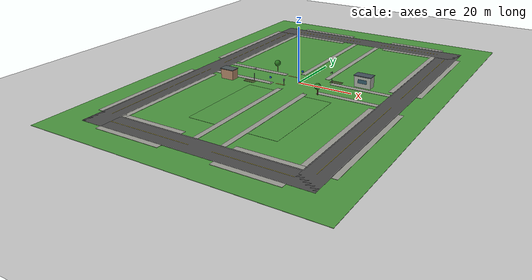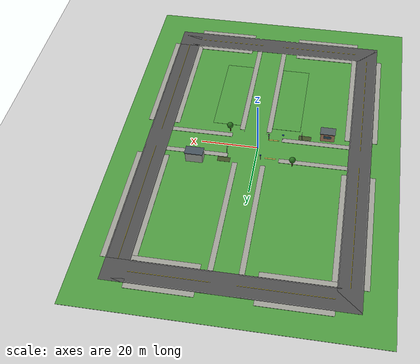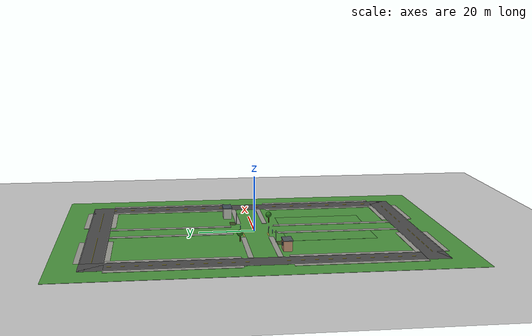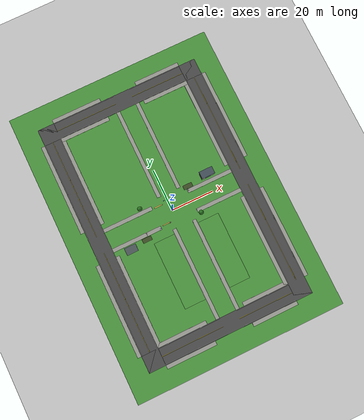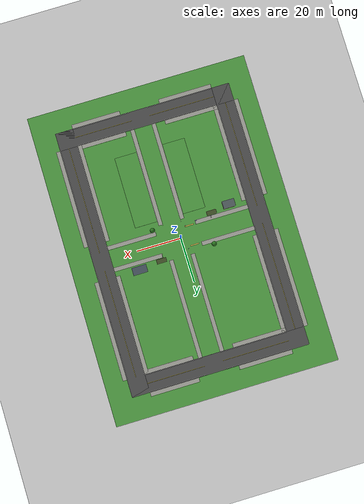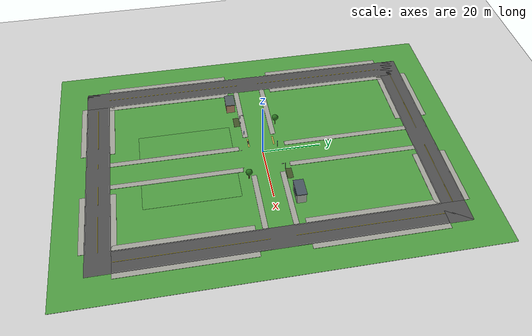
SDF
<sdf version="1.6">
 <world name="safe_drive_connected_road">
  <include><uri>model://ground_plane</uri><pose>0 0 -0.1 0 0 0</pose></include>
  <model name="pedestrian_signal_fixture">
   <static>true</static>
   <link name="post">
    <visual name="pole">
     <pose>-3.3 -4.68 1.04 0 0 0</pose>
     <geometry><cylinder><radius>0.05</radius><length>2.08</length></cylinder></geometry>
     <material><ambient>0.20 0.23 0.25 1</ambient><diffuse>0.31 0.34 0.36 1</diffuse></material>
    </visual>
    <visual name="housing">
     <pose>-3.3 -4.70 2.08 0 0 0</pose>
     <geometry><box><size>0.48 0.23 0.83</size></box></geometry>
     <material><ambient>0.035 0.045 0.05 1</ambient><diffuse>0.065 0.075 0.085 1</diffuse></material>
    </visual>
    <visual name="dont_walk_lens">
     <pose>-3.3 -4.56 2.27 0 0 0</pose>
     <geometry><box><size>0.31 0.025 0.30</size></box></geometry>
     <material><ambient>0.17 0.025 0.02 1</ambient><diffuse>0.17 0.025 0.02 1</diffuse></material>
    </visual>
    <visual name="walk_lens">
     <pose>-3.3 -4.56 1.89 0 0 0</pose>
     <geometry><box><size>0.31 0.025 0.30</size></box></geometry>
     <material><ambient>0.02 0.15 0.04 1</ambient><diffuse>0.02 0.15 0.04 1</diffuse></material>
    </visual>
   </link>
  </model>
  <model name="roadside">
   <static>true</static>
   <link name="streetscape">
    <visual name="south_arm_grass_west">
     <pose>-8 -26 -0.06 0 0 0</pose>
     <geometry><box><size>12 32 0.08</size></box></geometry>
     <material>
      <script>
       <uri>file://safe_drive_road/materials/scripts</uri>
       <uri>file://safe_drive_road/materials/textures</uri>
       <name>SafeDrive/Grass</name>
      </script>
     </material>
    </visual>
    <visual name="south_arm_grass_east">
     <pose>12 -26 -0.06 0 0 0</pose>
     <geometry><box><size>12 32 0.08</size></box></geometry>
     <material>
      <script>
       <uri>file://safe_drive_road/materials/scripts</uri>
       <uri>file://safe_drive_road/materials/textures</uri>
       <name>SafeDrive/Grass</name>
      </script>
     </material>
    </visual>
    <visual name="south_arm_sidewalk_west">
     <pose>-3 -26 -0.015 0 0 0</pose>
     <geometry><box><size>1.8 32 0.06</size></box></geometry>
     <material>
      <script>
       <uri>file://safe_drive_road/materials/scripts</uri>
       <uri>file://safe_drive_road/materials/textures</uri>
       <name>SafeDrive/Concrete</name>
      </script>
     </material>
    </visual>
    <visual name="south_arm_sidewalk_east">
     <pose>7 -26 -0.015 0 0 0</pose>
     <geometry><box><size>1.8 32 0.06</size></box></geometry>
     <material>
      <script>
       <uri>file://safe_drive_road/materials/scripts</uri>
       <uri>file://safe_drive_road/materials/textures</uri>
       <name>SafeDrive/Concrete</name>
      </script>
     </material>
    </visual>
    <visual name="south_arm_curb_west">
     <pose>-2.04 -24 -0.005 0 0 0</pose>
     <geometry><box><size>0.08 34 0.05</size></box></geometry>
     <material><ambient>0.75 0.75 0.70 1</ambient><diffuse>0.80 0.80 0.75 1</diffuse></material>
    </visual>
    <visual name="south_arm_curb_east">
     <pose>6.04 -24 -0.005 0 0 0</pose>
     <geometry><box><size>0.08 34 0.05</size></box></geometry>
     <material><ambient>0.75 0.75 0.70 1</ambient><diffuse>0.80 0.80 0.75 1</diffuse></material>
    </visual>
    <visual name="north_crossing_entry">
     <pose>-5 4.38 0.019 0 0 0</pose>
     <geometry><box><size>3.90 0.46 0.006</size></box></geometry>
     <material><ambient>0.73 0.63 0.27 1</ambient><diffuse>0.84 0.72 0.31 1</diffuse></material>
    </visual>
    <visual name="south_crossing_entry">
     <pose>-5 -4.38 0.019 0 0 0</pose>
     <geometry><box><size>3.90 0.46 0.006</size></box></geometry>
     <material><ambient>0.73 0.63 0.27 1</ambient><diffuse>0.84 0.72 0.31 1</diffuse></material>
    </visual>
    <visual name="north_planting_bed">
     <pose>11 7.0 -0.01 0 0 0</pose>
     <geometry><box><size>4.4 2.0 0.035</size></box></geometry>
     <material><ambient>0.18 0.24 0.12 1</ambient><diffuse>0.25 0.31 0.15 1</diffuse></material>
    </visual>
    <visual name="south_planting_bed">
     <pose>-16 -7.0 -0.01 0 0 0</pose>
     <geometry><box><size>4.4 2.0 0.035</size></box></geometry>
     <material><ambient>0.18 0.24 0.12 1</ambient><diffuse>0.25 0.31 0.15 1</diffuse></material>
    </visual>
    <visual name="north_lamp_post">
     <pose>10 5.70 2.10 0 0 0</pose>
     <geometry><cylinder><radius>0.065</radius><length>4.20</length></cylinder></geometry>
     <material><ambient>0.24 0.28 0.31 1</ambient><diffuse>0.36 0.40 0.43 1</diffuse></material>
    </visual>
    <visual name="north_lamp_arm">
     <pose>10 5.15 4.12 0 0 0</pose>
     <geometry><box><size>0.09 1.18 0.08</size></box></geometry>
     <material><ambient>0.24 0.28 0.31 1</ambient><diffuse>0.36 0.40 0.43 1</diffuse></material>
    </visual>
    <visual name="north_lamp_head">
     <pose>10 4.62 4.06 0 0 0</pose>
     <geometry><box><size>0.46 0.24 0.10</size></box></geometry>
     <material><ambient>0.83 0.81 0.64 1</ambient><diffuse>0.88 0.86 0.70 1</diffuse></material>
    </visual>
    <visual name="south_lamp_post">
     <pose>-15 -5.70 2.10 0 0 0</pose>
     <geometry><cylinder><radius>0.065</radius><length>4.20</length></cylinder></geometry>
     <material><ambient>0.24 0.28 0.31 1</ambient><diffuse>0.36 0.40 0.43 1</diffuse></material>
    </visual>
    <visual name="south_lamp_arm">
     <pose>-15 -5.15 4.12 0 0 0</pose>
     <geometry><box><size>0.09 1.18 0.08</size></box></geometry>
     <material><ambient>0.24 0.28 0.31 1</ambient><diffuse>0.36 0.40 0.43 1</diffuse></material>
    </visual>
    <visual name="south_lamp_head">
     <pose>-15 -4.62 4.06 0 0 0</pose>
     <geometry><box><size>0.46 0.24 0.10</size></box></geometry>
     <material><ambient>0.83 0.81 0.64 1</ambient><diffuse>0.88 0.86 0.70 1</diffuse></material>
    </visual>
    <visual name="north_pavilion_body">
     <pose>21 8.25 2.0 0 0 0</pose>
     <geometry><box><size>6.0 3.1 4.0</size></box></geometry>
     <material><ambient>0.50 0.52 0.49 1</ambient><diffuse>0.66 0.68 0.64 1</diffuse></material>
    </visual>
    <visual name="north_pavilion_roof">
     <pose>21 8.25 4.12 0 0 0</pose>
     <geometry><box><size>6.4 3.4 0.25</size></box></geometry>
     <material><ambient>0.19 0.24 0.29 1</ambient><diffuse>0.27 0.32 0.36 1</diffuse></material>
    </visual>
    <visual name="north_pavilion_window">
     <pose>21 6.69 2.25 0 0 0</pose>
     <geometry><box><size>3.2 0.025 1.35</size></box></geometry>
     <material><ambient>0.11 0.23 0.29 1</ambient><diffuse>0.20 0.35 0.41 1</diffuse></material>
    </visual>
    <visual name="south_pavilion_body">
     <pose>-24 -8.20 1.75 0 0 0</pose>
     <geometry><box><size>5.0 3.0 3.5</size></box></geometry>
     <material><ambient>0.57 0.42 0.32 1</ambient><diffuse>0.70 0.53 0.41 1</diffuse></material>
    </visual>
    <visual name="south_pavilion_roof">
     <pose>-24 -8.20 3.62 0 0 0</pose>
     <geometry><box><size>5.4 3.4 0.25</size></box></geometry>
     <material><ambient>0.22 0.26 0.28 1</ambient><diffuse>0.31 0.35 0.36 1</diffuse></material>
    </visual>
    <visual name="south_pavilion_window">
     <pose>-24 -6.69 2.02 0 0 0</pose>
     <geometry><box><size>2.7 0.025 1.15</size></box></geometry>
     <material><ambient>0.11 0.23 0.29 1</ambient><diffuse>0.20 0.35 0.41 1</diffuse></material>
    </visual>
    <visual name="south_crossing_sign_post">
     <pose>-8.3 -5.35 1.05 0 0 0</pose>
     <geometry><cylinder><radius>0.045</radius><length>2.1</length></cylinder></geometry>
     <material><ambient>0.32 0.35 0.37 1</ambient><diffuse>0.55 0.58 0.60 1</diffuse></material>
    </visual>
    <visual name="south_crossing_sign">
     <pose>-8.3 -5.35 2.25 0 0 0</pose>
     <geometry><box><size>0.65 0.08 0.65</size></box></geometry>
     <material><ambient>0.08 0.25 0.67 1</ambient><diffuse>0.10 0.37 0.85 1</diffuse></material>
    </visual>
    <visual name="north_crossing_sign_post">
     <pose>-1.7 5.35 1.05 0 0 0</pose>
     <geometry><cylinder><radius>0.045</radius><length>2.1</length></cylinder></geometry>
     <material><ambient>0.32 0.35 0.37 1</ambient><diffuse>0.55 0.58 0.60 1</diffuse></material>
    </visual>
    <visual name="north_crossing_sign">
     <pose>-1.7 5.35 2.25 0 0 0</pose>
     <geometry><box><size>0.65 0.08 0.65</size></box></geometry>
     <material><ambient>0.08 0.25 0.67 1</ambient><diffuse>0.10 0.37 0.85 1</diffuse></material>
    </visual>
    <visual name="south_tree_trunk">
     <pose>11 -6.6 1.3 0 0 0</pose>
     <geometry><cylinder><radius>0.16</radius><length>2.6</length></cylinder></geometry>
     <material><ambient>0.27 0.15 0.07 1</ambient><diffuse>0.39 0.23 0.10 1</diffuse></material>
    </visual>
    <visual name="south_tree_crown">
     <pose>11 -6.6 3.1 0 0 0</pose>
     <geometry><sphere><radius>1.1</radius></sphere></geometry>
     <material><ambient>0.09 0.27 0.07 1</ambient><diffuse>0.16 0.45 0.12 1</diffuse></material>
    </visual>
    <visual name="north_tree_trunk">
     <pose>-13 6.6 1.3 0 0 0</pose>
     <geometry><cylinder><radius>0.16</radius><length>2.6</length></cylinder></geometry>
     <material><ambient>0.27 0.15 0.07 1</ambient><diffuse>0.39 0.23 0.10 1</diffuse></material>
    </visual>
    <visual name="north_tree_crown">
     <pose>-13 6.6 3.1 0 0 0</pose>
     <geometry><sphere><radius>1.1</radius></sphere></geometry>
     <material><ambient>0.09 0.27 0.07 1</ambient><diffuse>0.16 0.45 0.12 1</diffuse></material>
    </visual>
   </link>
  </model>
  <model name="connected_road_grid">
   <static>true</static>
   <link name="road_surfaces">
    <visual name="grass_base">
     <pose>0 0 -0.105 0 0 0</pose>
     <geometry><box><size>100 140 0.1</size></box></geometry>
     <material>
      <script>
       <uri>file://safe_drive_road/materials/scripts</uri>
       <uri>file://safe_drive_road/materials/textures</uri>
       <name>SafeDrive/Grass</name>
      </script>
     </material>
    </visual>
    <collision name="south_collision">
     <pose>0 -56 -0.05 0 0 0</pose>
     <geometry><box><size>80 8 0.1</size></box></geometry>
    </collision>
    <visual name="south_asphalt">
     <pose>0 -56 -0.045 0 0 0</pose>
     <geometry><box><size>80 8 0.01</size></box></geometry>
     <material>
      <script>
       <uri>file://safe_drive_road/materials/scripts</uri>
       <uri>file://safe_drive_road/materials/textures</uri>
       <name>SafeDrive/Asphalt</name>
      </script>
     </material>
    </visual>
    <visual name="south_center_1">
     <pose>-17 -56 -0.028 0 0 0</pose>
     <geometry><box><size>30 0.12 0.012</size></box></geometry>
     <material><ambient>0.95 0.85 0.10 1</ambient><diffuse>0.95 0.85 0.10 1</diffuse></material>
    </visual>
    <visual name="south_edge_1_-3.75">
     <pose>-17 -59.75 -0.028 0 0 0</pose>
     <geometry><box><size>30 0.1 0.012</size></box></geometry>
     <material><ambient>0.95 0.95 0.95 1</ambient><diffuse>0.95 0.95 0.95 1</diffuse></material>
    </visual>
    <visual name="south_edge_1_3.75">
     <pose>-17 -52.25 -0.028 0 0 0</pose>
     <geometry><box><size>30 0.1 0.012</size></box></geometry>
     <material><ambient>0.95 0.95 0.95 1</ambient><diffuse>0.95 0.95 0.95 1</diffuse></material>
    </visual>
    <visual name="south_center_2">
     <pose>19 -56 -0.028 0 0 0</pose>
     <geometry><box><size>26 0.12 0.012</size></box></geometry>
     <material><ambient>0.95 0.85 0.10 1</ambient><diffuse>0.95 0.85 0.10 1</diffuse></material>
    </visual>
    <visual name="south_edge_2_-3.75">
     <pose>19 -59.75 -0.028 0 0 0</pose>
     <geometry><box><size>26 0.1 0.012</size></box></geometry>
     <material><ambient>0.95 0.95 0.95 1</ambient><diffuse>0.95 0.95 0.95 1</diffuse></material>
    </visual>
    <visual name="south_edge_2_3.75">
     <pose>19 -52.25 -0.028 0 0 0</pose>
     <geometry><box><size>26 0.1 0.012</size></box></geometry>
     <material><ambient>0.95 0.95 0.95 1</ambient><diffuse>0.95 0.95 0.95 1</diffuse></material>
    </visual>
    <collision name="north_collision">
     <pose>0 56 -0.05 0 0 0</pose>
     <geometry><box><size>80 8 0.1</size></box></geometry>
    </collision>
    <visual name="north_asphalt">
     <pose>0 56 -0.045 0 0 0</pose>
     <geometry><box><size>80 8 0.01</size></box></geometry>
     <material>
      <script>
       <uri>file://safe_drive_road/materials/scripts</uri>
       <uri>file://safe_drive_road/materials/textures</uri>
       <name>SafeDrive/Asphalt</name>
      </script>
     </material>
    </visual>
    <visual name="north_center_1">
     <pose>-17 56 -0.028 0 0 0</pose>
     <geometry><box><size>30 0.12 0.012</size></box></geometry>
     <material><ambient>0.95 0.85 0.10 1</ambient><diffuse>0.95 0.85 0.10 1</diffuse></material>
    </visual>
    <visual name="north_edge_1_-3.75">
     <pose>-17 52.25 -0.028 0 0 0</pose>
     <geometry><box><size>30 0.1 0.012</size></box></geometry>
     <material><ambient>0.95 0.95 0.95 1</ambient><diffuse>0.95 0.95 0.95 1</diffuse></material>
    </visual>
    <visual name="north_edge_1_3.75">
     <pose>-17 59.75 -0.028 0 0 0</pose>
     <geometry><box><size>30 0.1 0.012</size></box></geometry>
     <material><ambient>0.95 0.95 0.95 1</ambient><diffuse>0.95 0.95 0.95 1</diffuse></material>
    </visual>
    <visual name="north_center_2">
     <pose>19 56 -0.028 0 0 0</pose>
     <geometry><box><size>26 0.12 0.012</size></box></geometry>
     <material><ambient>0.95 0.85 0.10 1</ambient><diffuse>0.95 0.85 0.10 1</diffuse></material>
    </visual>
    <visual name="north_edge_2_-3.75">
     <pose>19 52.25 -0.028 0 0 0</pose>
     <geometry><box><size>26 0.1 0.012</size></box></geometry>
     <material><ambient>0.95 0.95 0.95 1</ambient><diffuse>0.95 0.95 0.95 1</diffuse></material>
    </visual>
    <visual name="north_edge_2_3.75">
     <pose>19 59.75 -0.028 0 0 0</pose>
     <geometry><box><size>26 0.1 0.012</size></box></geometry>
     <material><ambient>0.95 0.95 0.95 1</ambient><diffuse>0.95 0.95 0.95 1</diffuse></material>
    </visual>
    <collision name="west_collision">
     <pose>-36 0 -0.05 0 0 0</pose>
     <geometry><box><size>8 120 0.1</size></box></geometry>
    </collision>
    <visual name="west_asphalt">
     <pose>-36 0 -0.045 0 0 0</pose>
     <geometry><box><size>8 120 0.01</size></box></geometry>
     <material>
      <script>
       <uri>file://safe_drive_road/materials/scripts</uri>
       <uri>file://safe_drive_road/materials/textures</uri>
       <name>SafeDrive/Asphalt</name>
      </script>
     </material>
    </visual>
    <visual name="west_center_1">
     <pose>-36 -28 -0.028 0 0 0</pose>
     <geometry><box><size>0.12 48 0.012</size></box></geometry>
     <material><ambient>0.95 0.85 0.10 1</ambient><diffuse>0.95 0.85 0.10 1</diffuse></material>
    </visual>
    <visual name="west_edge_1_-3.75">
     <pose>-39.75 -28 -0.028 0 0 0</pose>
     <geometry><box><size>0.1 48 0.012</size></box></geometry>
     <material><ambient>0.95 0.95 0.95 1</ambient><diffuse>0.95 0.95 0.95 1</diffuse></material>
    </visual>
    <visual name="west_edge_1_3.75">
     <pose>-32.25 -28 -0.028 0 0 0</pose>
     <geometry><box><size>0.1 48 0.012</size></box></geometry>
     <material><ambient>0.95 0.95 0.95 1</ambient><diffuse>0.95 0.95 0.95 1</diffuse></material>
    </visual>
    <visual name="west_center_2">
     <pose>-36 28 -0.028 0 0 0</pose>
     <geometry><box><size>0.12 48 0.012</size></box></geometry>
     <material><ambient>0.95 0.85 0.10 1</ambient><diffuse>0.95 0.85 0.10 1</diffuse></material>
    </visual>
    <visual name="west_edge_2_-3.75">
     <pose>-39.75 28 -0.028 0 0 0</pose>
     <geometry><box><size>0.1 48 0.012</size></box></geometry>
     <material><ambient>0.95 0.95 0.95 1</ambient><diffuse>0.95 0.95 0.95 1</diffuse></material>
    </visual>
    <visual name="west_edge_2_3.75">
     <pose>-32.25 28 -0.028 0 0 0</pose>
     <geometry><box><size>0.1 48 0.012</size></box></geometry>
     <material><ambient>0.95 0.95 0.95 1</ambient><diffuse>0.95 0.95 0.95 1</diffuse></material>
    </visual>
    <collision name="east_collision">
     <pose>36 0 -0.05 0 0 0</pose>
     <geometry><box><size>8 120 0.1</size></box></geometry>
    </collision>
    <visual name="east_asphalt">
     <pose>36 0 -0.045 0 0 0</pose>
     <geometry><box><size>8 120 0.01</size></box></geometry>
     <material>
      <script>
       <uri>file://safe_drive_road/materials/scripts</uri>
       <uri>file://safe_drive_road/materials/textures</uri>
       <name>SafeDrive/Asphalt</name>
      </script>
     </material>
    </visual>
    <visual name="east_center_1">
     <pose>36 -28 -0.028 0 0 0</pose>
     <geometry><box><size>0.12 48 0.012</size></box></geometry>
     <material><ambient>0.95 0.85 0.10 1</ambient><diffuse>0.95 0.85 0.10 1</diffuse></material>
    </visual>
    <visual name="east_edge_1_-3.75">
     <pose>32.25 -28 -0.028 0 0 0</pose>
     <geometry><box><size>0.1 48 0.012</size></box></geometry>
     <material><ambient>0.95 0.95 0.95 1</ambient><diffuse>0.95 0.95 0.95 1</diffuse></material>
    </visual>
    <visual name="east_edge_1_3.75">
     <pose>39.75 -28 -0.028 0 0 0</pose>
     <geometry><box><size>0.1 48 0.012</size></box></geometry>
     <material><ambient>0.95 0.95 0.95 1</ambient><diffuse>0.95 0.95 0.95 1</diffuse></material>
    </visual>
    <visual name="east_center_2">
     <pose>36 28 -0.028 0 0 0</pose>
     <geometry><box><size>0.12 48 0.012</size></box></geometry>
     <material><ambient>0.95 0.85 0.10 1</ambient><diffuse>0.95 0.85 0.10 1</diffuse></material>
    </visual>
    <visual name="east_edge_2_-3.75">
     <pose>32.25 28 -0.028 0 0 0</pose>
     <geometry><box><size>0.1 48 0.012</size></box></geometry>
     <material><ambient>0.95 0.95 0.95 1</ambient><diffuse>0.95 0.95 0.95 1</diffuse></material>
    </visual>
    <visual name="east_edge_2_3.75">
     <pose>39.75 28 -0.028 0 0 0</pose>
     <geometry><box><size>0.1 48 0.012</size></box></geometry>
     <material><ambient>0.95 0.95 0.95 1</ambient><diffuse>0.95 0.95 0.95 1</diffuse></material>
    </visual>
    <visual name="south_sidewalk_-32_-4.9">
     <pose>-20 -60.9 -0.015 0 0 0</pose>
     <geometry><box><size>24 1.8 0.1</size></box></geometry>
     <material><ambient>0.62 0.62 0.59 1</ambient><diffuse>0.62 0.62 0.59 1</diffuse></material>
    </visual>
    <visual name="south_sidewalk_-32_4.9">
     <pose>-20 -51.1 -0.015 0 0 0</pose>
     <geometry><box><size>24 1.8 0.1</size></box></geometry>
     <material><ambient>0.62 0.62 0.59 1</ambient><diffuse>0.62 0.62 0.59 1</diffuse></material>
    </visual>
    <visual name="south_sidewalk_10_-4.9">
     <pose>21 -60.9 -0.015 0 0 0</pose>
     <geometry><box><size>22 1.8 0.1</size></box></geometry>
     <material><ambient>0.62 0.62 0.59 1</ambient><diffuse>0.62 0.62 0.59 1</diffuse></material>
    </visual>
    <visual name="south_sidewalk_10_4.9">
     <pose>21 -51.1 -0.015 0 0 0</pose>
     <geometry><box><size>22 1.8 0.1</size></box></geometry>
     <material><ambient>0.62 0.62 0.59 1</ambient><diffuse>0.62 0.62 0.59 1</diffuse></material>
    </visual>
    <visual name="middle_sidewalk_-32_-4.9">
     <pose>-20 -4.9 -0.015 0 0 0</pose>
     <geometry><box><size>24 1.8 0.1</size></box></geometry>
     <material><ambient>0.62 0.62 0.59 1</ambient><diffuse>0.62 0.62 0.59 1</diffuse></material>
    </visual>
    <visual name="middle_sidewalk_-32_4.9">
     <pose>-20 4.9 -0.015 0 0 0</pose>
     <geometry><box><size>24 1.8 0.1</size></box></geometry>
     <material><ambient>0.62 0.62 0.59 1</ambient><diffuse>0.62 0.62 0.59 1</diffuse></material>
    </visual>
    <visual name="middle_sidewalk_10_-4.9">
     <pose>21 -4.9 -0.015 0 0 0</pose>
     <geometry><box><size>22 1.8 0.1</size></box></geometry>
     <material><ambient>0.62 0.62 0.59 1</ambient><diffuse>0.62 0.62 0.59 1</diffuse></material>
    </visual>
    <visual name="middle_sidewalk_10_4.9">
     <pose>21 4.9 -0.015 0 0 0</pose>
     <geometry><box><size>22 1.8 0.1</size></box></geometry>
     <material><ambient>0.62 0.62 0.59 1</ambient><diffuse>0.62 0.62 0.59 1</diffuse></material>
    </visual>
    <visual name="north_sidewalk_-32_-4.9">
     <pose>-20 51.1 -0.015 0 0 0</pose>
     <geometry><box><size>24 1.8 0.1</size></box></geometry>
     <material><ambient>0.62 0.62 0.59 1</ambient><diffuse>0.62 0.62 0.59 1</diffuse></material>
    </visual>
    <visual name="north_sidewalk_-32_4.9">
     <pose>-20 60.9 -0.015 0 0 0</pose>
     <geometry><box><size>24 1.8 0.1</size></box></geometry>
     <material><ambient>0.62 0.62 0.59 1</ambient><diffuse>0.62 0.62 0.59 1</diffuse></material>
    </visual>
    <visual name="north_sidewalk_10_-4.9">
     <pose>21 51.1 -0.015 0 0 0</pose>
     <geometry><box><size>22 1.8 0.1</size></box></geometry>
     <material><ambient>0.62 0.62 0.59 1</ambient><diffuse>0.62 0.62 0.59 1</diffuse></material>
    </visual>
    <visual name="north_sidewalk_10_4.9">
     <pose>21 60.9 -0.015 0 0 0</pose>
     <geometry><box><size>22 1.8 0.1</size></box></geometry>
     <material><ambient>0.62 0.62 0.59 1</ambient><diffuse>0.62 0.62 0.59 1</diffuse></material>
    </visual>
    <visual name="west_sidewalk_-52_-4.9">
     <pose>-40.9 -30 -0.015 0 0 0</pose>
     <geometry><box><size>1.8 44 0.1</size></box></geometry>
     <material><ambient>0.62 0.62 0.59 1</ambient><diffuse>0.62 0.62 0.59 1</diffuse></material>
    </visual>
    <visual name="west_sidewalk_-52_4.9">
     <pose>-31.1 -30 -0.015 0 0 0</pose>
     <geometry><box><size>1.8 44 0.1</size></box></geometry>
     <material><ambient>0.62 0.62 0.59 1</ambient><diffuse>0.62 0.62 0.59 1</diffuse></material>
    </visual>
    <visual name="west_sidewalk_8_-4.9">
     <pose>-40.9 30 -0.015 0 0 0</pose>
     <geometry><box><size>1.8 44 0.1</size></box></geometry>
     <material><ambient>0.62 0.62 0.59 1</ambient><diffuse>0.62 0.62 0.59 1</diffuse></material>
    </visual>
    <visual name="west_sidewalk_8_4.9">
     <pose>-31.1 30 -0.015 0 0 0</pose>
     <geometry><box><size>1.8 44 0.1</size></box></geometry>
     <material><ambient>0.62 0.62 0.59 1</ambient><diffuse>0.62 0.62 0.59 1</diffuse></material>
    </visual>
    <visual name="middle_sidewalk_-52_-4.9">
     <pose>-2.9 -30 -0.015 0 0 0</pose>
     <geometry><box><size>1.8 44 0.1</size></box></geometry>
     <material><ambient>0.62 0.62 0.59 1</ambient><diffuse>0.62 0.62 0.59 1</diffuse></material>
    </visual>
    <visual name="middle_sidewalk_-52_4.9">
     <pose>6.9 -30 -0.015 0 0 0</pose>
     <geometry><box><size>1.8 44 0.1</size></box></geometry>
     <material><ambient>0.62 0.62 0.59 1</ambient><diffuse>0.62 0.62 0.59 1</diffuse></material>
    </visual>
    <visual name="middle_sidewalk_8_-4.9">
     <pose>-2.9 30 -0.015 0 0 0</pose>
     <geometry><box><size>1.8 44 0.1</size></box></geometry>
     <material><ambient>0.62 0.62 0.59 1</ambient><diffuse>0.62 0.62 0.59 1</diffuse></material>
    </visual>
    <visual name="middle_sidewalk_8_4.9">
     <pose>6.9 30 -0.015 0 0 0</pose>
     <geometry><box><size>1.8 44 0.1</size></box></geometry>
     <material><ambient>0.62 0.62 0.59 1</ambient><diffuse>0.62 0.62 0.59 1</diffuse></material>
    </visual>
    <visual name="east_sidewalk_-52_-4.9">
     <pose>31.1 -30 -0.015 0 0 0</pose>
     <geometry><box><size>1.8 44 0.1</size></box></geometry>
     <material><ambient>0.62 0.62 0.59 1</ambient><diffuse>0.62 0.62 0.59 1</diffuse></material>
    </visual>
    <visual name="east_sidewalk_-52_4.9">
     <pose>40.9 -30 -0.015 0 0 0</pose>
     <geometry><box><size>1.8 44 0.1</size></box></geometry>
     <material><ambient>0.62 0.62 0.59 1</ambient><diffuse>0.62 0.62 0.59 1</diffuse></material>
    </visual>
    <visual name="east_sidewalk_8_-4.9">
     <pose>31.1 30 -0.015 0 0 0</pose>
     <geometry><box><size>1.8 44 0.1</size></box></geometry>
     <material><ambient>0.62 0.62 0.59 1</ambient><diffuse>0.62 0.62 0.59 1</diffuse></material>
    </visual>
    <visual name="east_sidewalk_8_4.9">
     <pose>40.9 30 -0.015 0 0 0</pose>
     <geometry><box><size>1.8 44 0.1</size></box></geometry>
     <material><ambient>0.62 0.62 0.59 1</ambient><diffuse>0.62 0.62 0.59 1</diffuse></material>
    </visual>
   </link>
  </model>
 </world>
</sdf>
